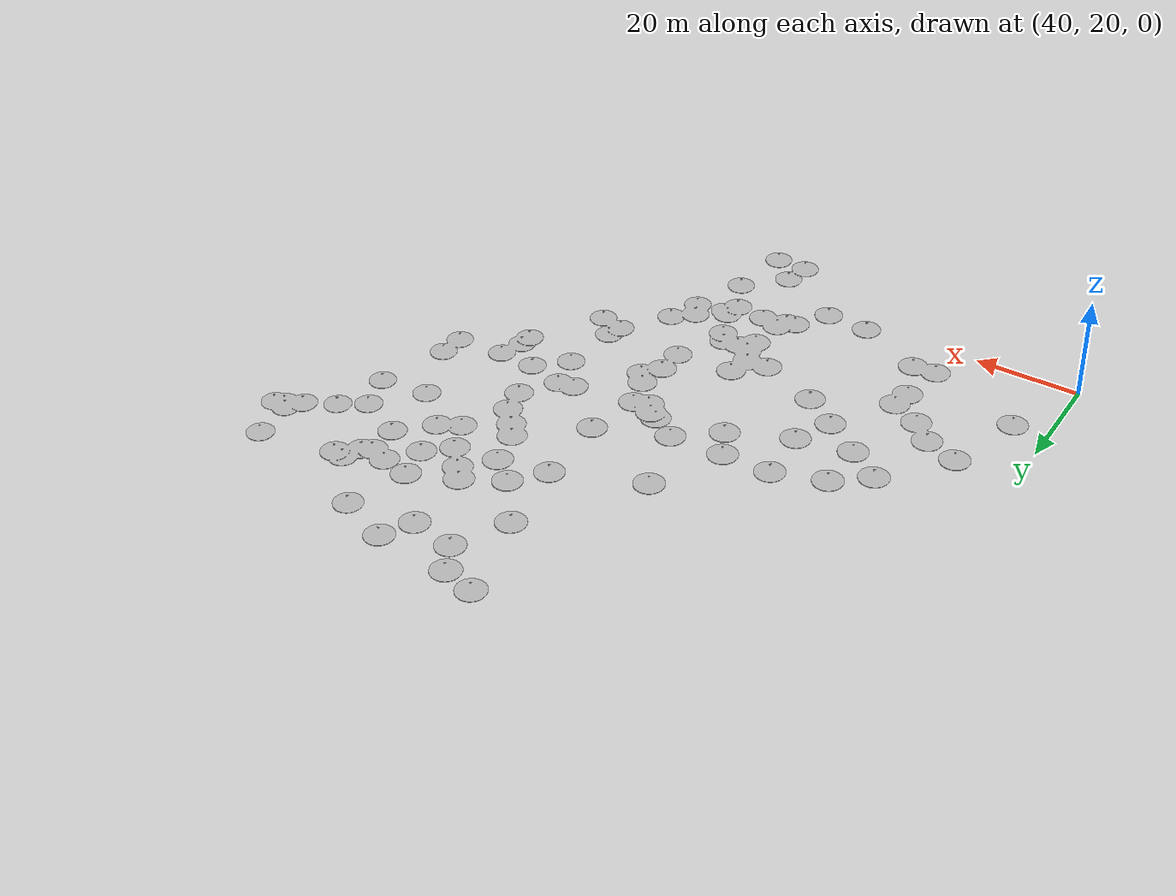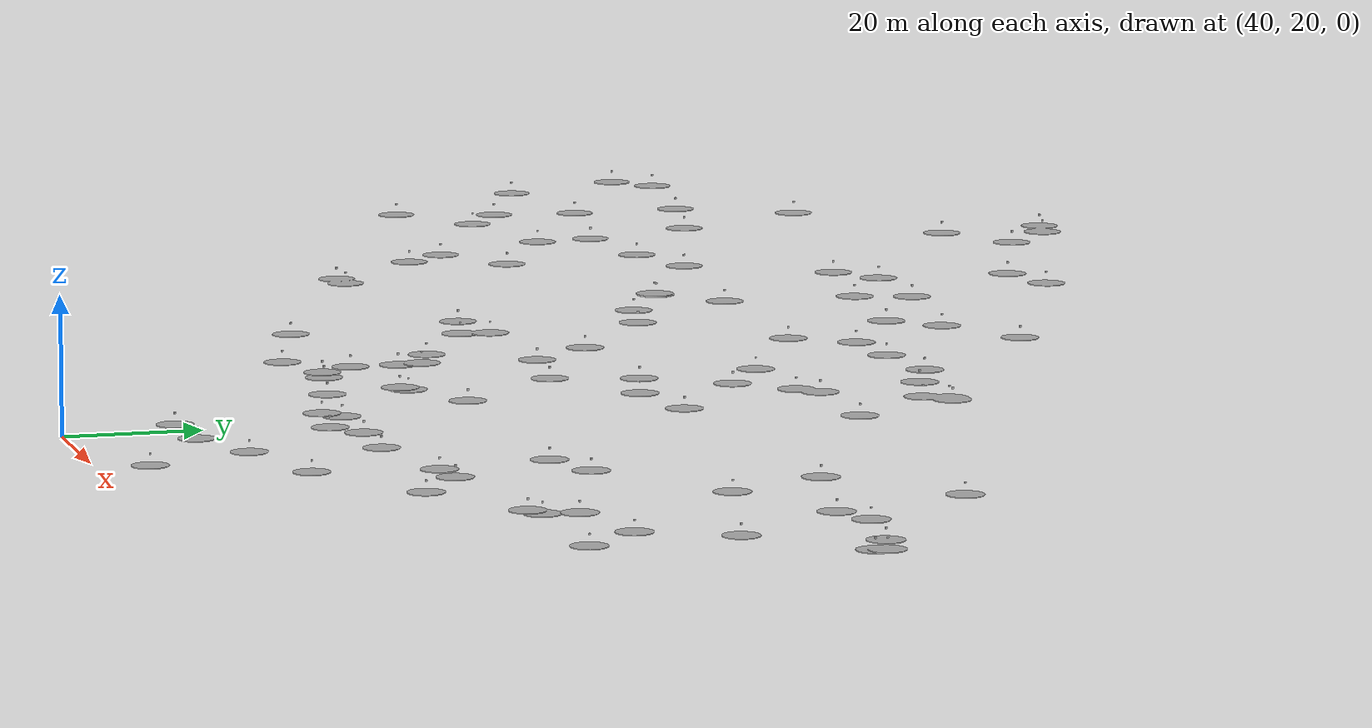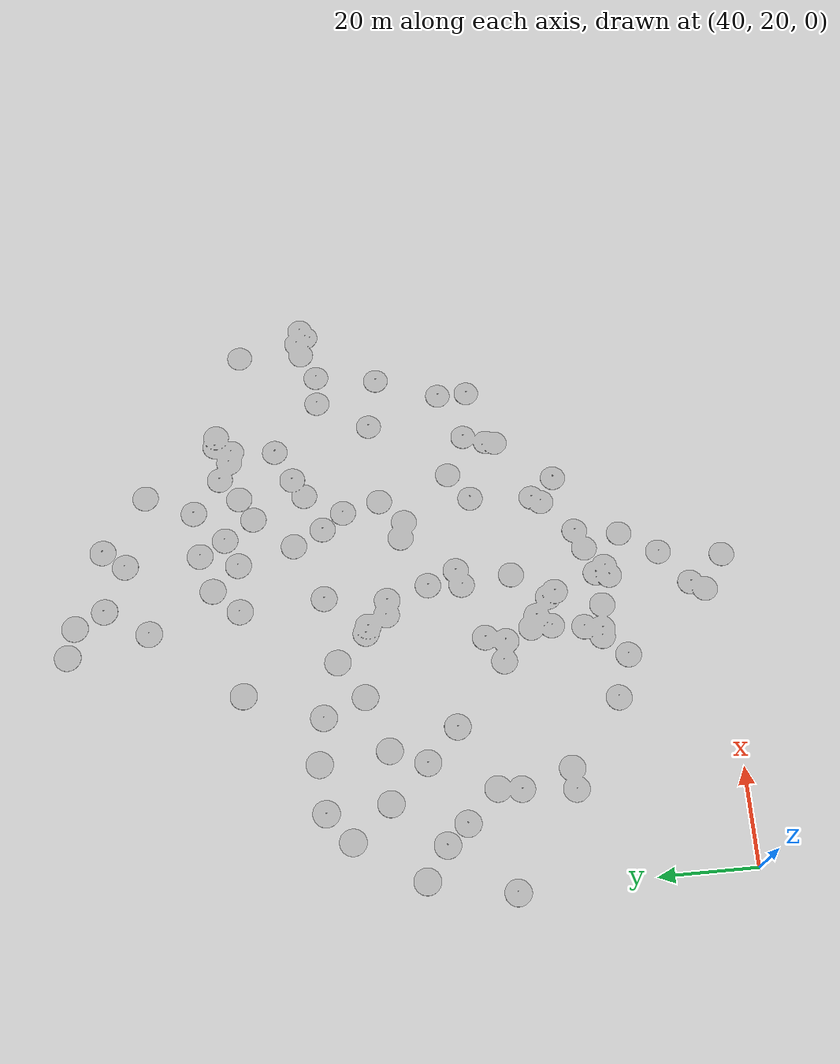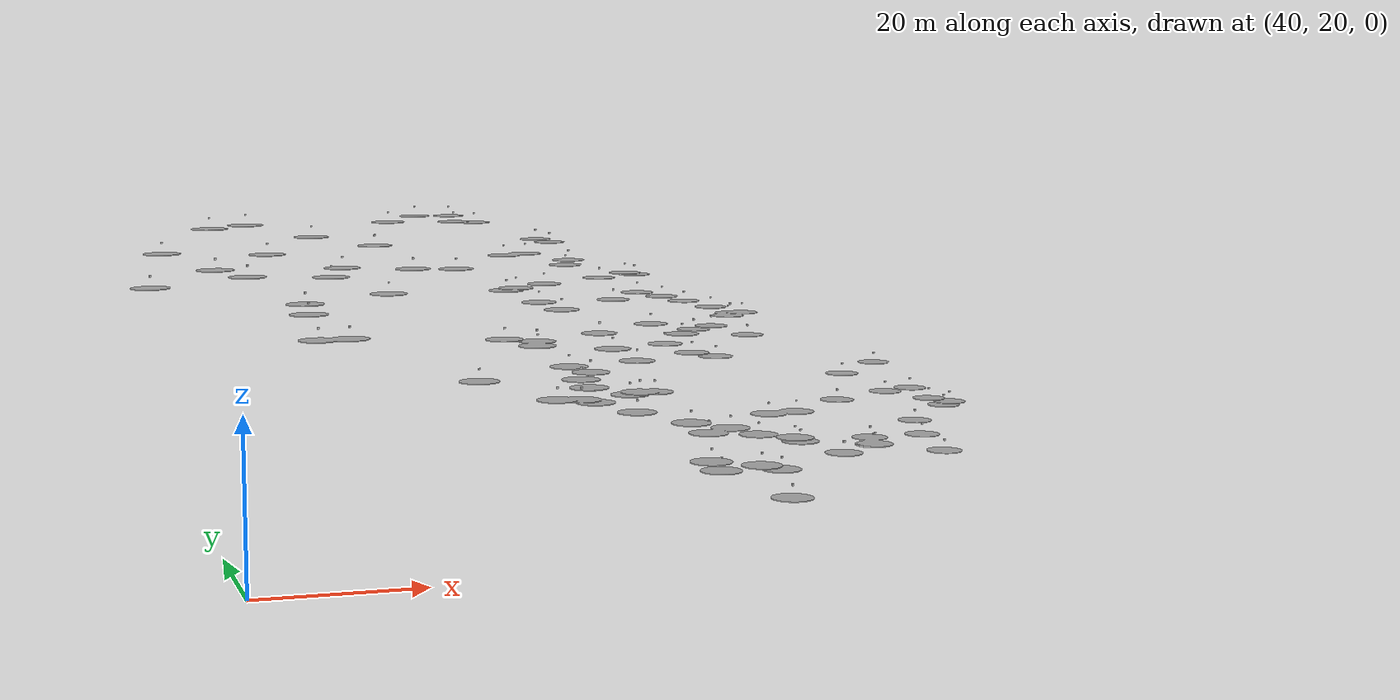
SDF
<?xml version="1.0" ?>
<sdf version="1.10">
    <model name="obstacles_marker">
        <link name="obstacles_marker_link">
            <visual name="obstacles_marker_visual">
                <geometry>
                    <mesh>
                        <uri>meshes/visual/obstacles_marker.obj</uri>
                    </mesh>
                </geometry>
            </visual>
        </link>
        <static>True</static>
    </model>
</sdf>
